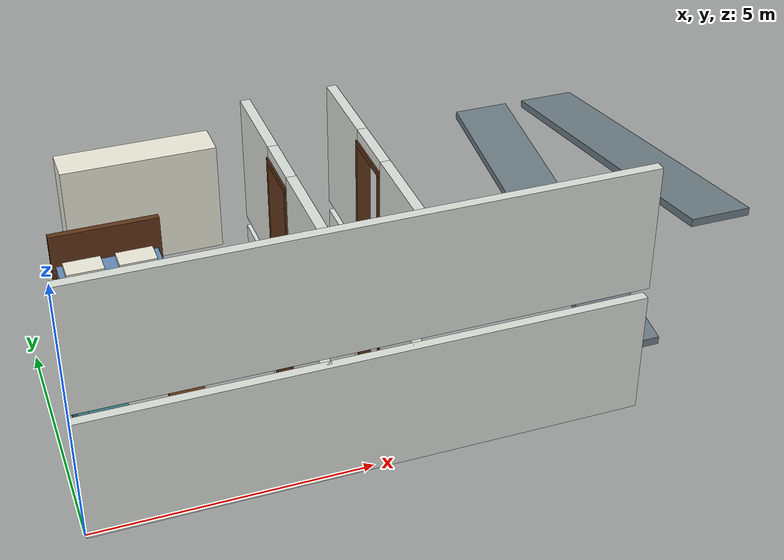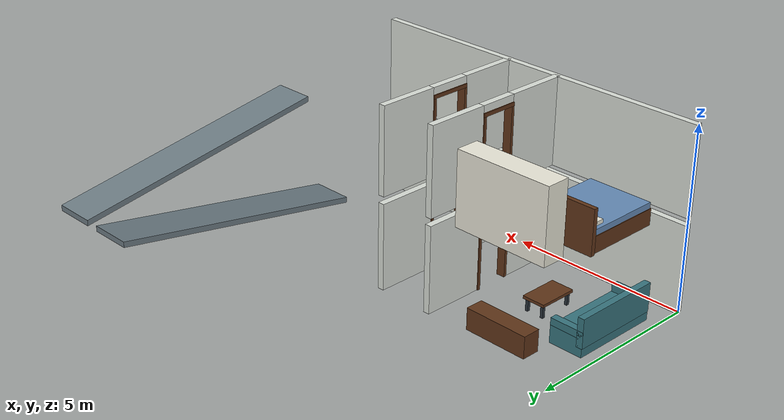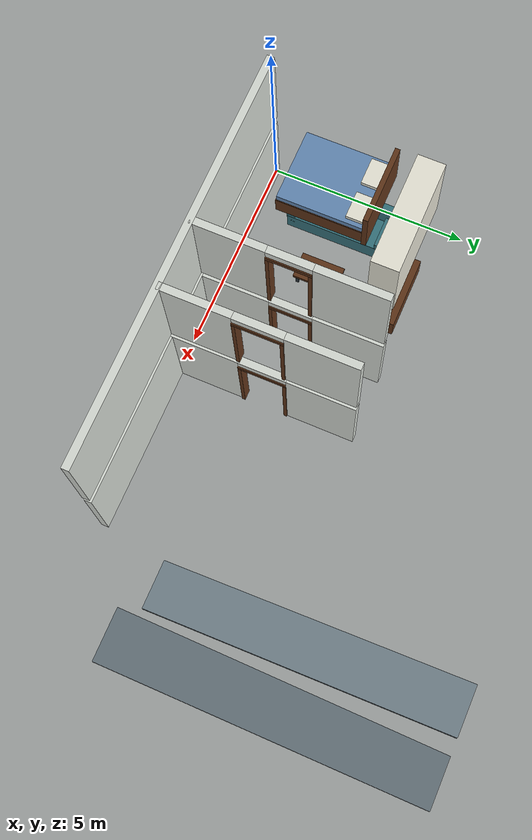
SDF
<sdf version="1.7">
 <model name="home_indoor">
  <static>true</static>
  <link name="f0_south">
   <pose>5 0 1.2 0 0 0</pose>
   <collision name="f0_south_collision">
    <geometry><box><size>10 0.18 2.4</size></box></geometry>
    <surface><friction><ode><mu>1.0</mu><mu2>1.0</mu2></ode></friction></surface>
   </collision>
   <visual name="f0_south_visual">
    <geometry><box><size>10 0.18 2.4</size></box></geometry>
    <material><ambient>0.86 0.88 0.85 1</ambient><diffuse>0.86 0.88 0.85 1</diffuse></material>
   </visual>
  </link>
  <link name="f0_room_4.2_0_south">
   <pose>4.2 0.86 1.2 0 0 0</pose>
   <collision name="f0_room_4.2_0_south_collision">
    <geometry><box><size>0.18 1.72 2.4</size></box></geometry>
    <surface><friction><ode><mu>1.0</mu><mu2>1.0</mu2></ode></friction></surface>
   </collision>
   <visual name="f0_room_4.2_0_south_visual">
    <geometry><box><size>0.18 1.72 2.4</size></box></geometry>
    <material><ambient>0.86 0.88 0.85 1</ambient><diffuse>0.86 0.88 0.85 1</diffuse></material>
   </visual>
  </link>
  <link name="f0_room_4.2_0_north">
   <pose>4.2 3.64 1.2 0 0 0</pose>
   <collision name="f0_room_4.2_0_north_collision">
    <geometry><box><size>0.18 1.72 2.4</size></box></geometry>
    <surface><friction><ode><mu>1.0</mu><mu2>1.0</mu2></ode></friction></surface>
   </collision>
   <visual name="f0_room_4.2_0_north_visual">
    <geometry><box><size>0.18 1.72 2.4</size></box></geometry>
    <material><ambient>0.86 0.88 0.85 1</ambient><diffuse>0.86 0.88 0.85 1</diffuse></material>
   </visual>
  </link>
  <link name="f0_room_4.2_0_lintel">
   <pose>4.2 2.25 2.3 0 0 0</pose>
   <collision name="f0_room_4.2_0_lintel_collision">
    <geometry><box><size>0.18 1.06 0.2</size></box></geometry>
    <surface><friction><ode><mu>1.0</mu><mu2>1.0</mu2></ode></friction></surface>
   </collision>
   <visual name="f0_room_4.2_0_lintel_visual">
    <geometry><box><size>0.18 1.06 0.2</size></box></geometry>
    <material><ambient>0.86 0.88 0.85 1</ambient><diffuse>0.86 0.88 0.85 1</diffuse></material>
   </visual>
  </link>
  <link name="f0_room_4.2_0_jamb_-1">
   <pose>4.2 1.76 1.05 0 0 0</pose>
   <collision name="f0_room_4.2_0_jamb_-1_collision">
    <geometry><box><size>0.24 0.08 2.1</size></box></geometry>
    <surface><friction><ode><mu>1.0</mu><mu2>1.0</mu2></ode></friction></surface>
   </collision>
   <visual name="f0_room_4.2_0_jamb_-1_visual">
    <geometry><box><size>0.24 0.08 2.1</size></box></geometry>
    <material><ambient>0.38 0.21 0.10 1</ambient><diffuse>0.38 0.21 0.10 1</diffuse></material>
   </visual>
  </link>
  <link name="f0_room_4.2_0_jamb_1">
   <pose>4.2 2.74 1.05 0 0 0</pose>
   <collision name="f0_room_4.2_0_jamb_1_collision">
    <geometry><box><size>0.24 0.08 2.1</size></box></geometry>
    <surface><friction><ode><mu>1.0</mu><mu2>1.0</mu2></ode></friction></surface>
   </collision>
   <visual name="f0_room_4.2_0_jamb_1_visual">
    <geometry><box><size>0.24 0.08 2.1</size></box></geometry>
    <material><ambient>0.38 0.21 0.10 1</ambient><diffuse>0.38 0.21 0.10 1</diffuse></material>
   </visual>
  </link>
  <link name="f0_room_4.2_0_frame_top">
   <pose>4.2 2.25 2.15 0 0 0</pose>
   <collision name="f0_room_4.2_0_frame_top_collision">
    <geometry><box><size>0.24 1.06 0.1</size></box></geometry>
    <surface><friction><ode><mu>1.0</mu><mu2>1.0</mu2></ode></friction></surface>
   </collision>
   <visual name="f0_room_4.2_0_frame_top_visual">
    <geometry><box><size>0.24 1.06 0.1</size></box></geometry>
    <material><ambient>0.38 0.21 0.10 1</ambient><diffuse>0.38 0.21 0.10 1</diffuse></material>
   </visual>
  </link>
  <link name="f0_room_5.8_0_south">
   <pose>5.8 0.835 1.2 0 0 0</pose>
   <collision name="f0_room_5.8_0_south_collision">
    <geometry><box><size>0.18 1.67 2.4</size></box></geometry>
    <surface><friction><ode><mu>1.0</mu><mu2>1.0</mu2></ode></friction></surface>
   </collision>
   <visual name="f0_room_5.8_0_south_visual">
    <geometry><box><size>0.18 1.67 2.4</size></box></geometry>
    <material><ambient>0.86 0.88 0.85 1</ambient><diffuse>0.86 0.88 0.85 1</diffuse></material>
   </visual>
  </link>
  <link name="f0_room_5.8_0_north">
   <pose>5.8 3.665 1.2 0 0 0</pose>
   <collision name="f0_room_5.8_0_north_collision">
    <geometry><box><size>0.18 1.67 2.4</size></box></geometry>
    <surface><friction><ode><mu>1.0</mu><mu2>1.0</mu2></ode></friction></surface>
   </collision>
   <visual name="f0_room_5.8_0_north_visual">
    <geometry><box><size>0.18 1.67 2.4</size></box></geometry>
    <material><ambient>0.86 0.88 0.85 1</ambient><diffuse>0.86 0.88 0.85 1</diffuse></material>
   </visual>
  </link>
  <link name="f0_room_5.8_0_lintel">
   <pose>5.8 2.25 2.3 0 0 0</pose>
   <collision name="f0_room_5.8_0_lintel_collision">
    <geometry><box><size>0.18 1.16 0.2</size></box></geometry>
    <surface><friction><ode><mu>1.0</mu><mu2>1.0</mu2></ode></friction></surface>
   </collision>
   <visual name="f0_room_5.8_0_lintel_visual">
    <geometry><box><size>0.18 1.16 0.2</size></box></geometry>
    <material><ambient>0.86 0.88 0.85 1</ambient><diffuse>0.86 0.88 0.85 1</diffuse></material>
   </visual>
  </link>
  <link name="f0_room_5.8_0_jamb_-1">
   <pose>5.8 1.71 1.05 0 0 0</pose>
   <collision name="f0_room_5.8_0_jamb_-1_collision">
    <geometry><box><size>0.24 0.08 2.1</size></box></geometry>
    <surface><friction><ode><mu>1.0</mu><mu2>1.0</mu2></ode></friction></surface>
   </collision>
   <visual name="f0_room_5.8_0_jamb_-1_visual">
    <geometry><box><size>0.24 0.08 2.1</size></box></geometry>
    <material><ambient>0.38 0.21 0.10 1</ambient><diffuse>0.38 0.21 0.10 1</diffuse></material>
   </visual>
  </link>
  <link name="f0_room_5.8_0_jamb_1">
   <pose>5.8 2.79 1.05 0 0 0</pose>
   <collision name="f0_room_5.8_0_jamb_1_collision">
    <geometry><box><size>0.24 0.08 2.1</size></box></geometry>
    <surface><friction><ode><mu>1.0</mu><mu2>1.0</mu2></ode></friction></surface>
   </collision>
   <visual name="f0_room_5.8_0_jamb_1_visual">
    <geometry><box><size>0.24 0.08 2.1</size></box></geometry>
    <material><ambient>0.38 0.21 0.10 1</ambient><diffuse>0.38 0.21 0.10 1</diffuse></material>
   </visual>
  </link>
  <link name="f0_room_5.8_0_frame_top">
   <pose>5.8 2.25 2.15 0 0 0</pose>
   <collision name="f0_room_5.8_0_frame_top_collision">
    <geometry><box><size>0.24 1.16 0.1</size></box></geometry>
    <surface><friction><ode><mu>1.0</mu><mu2>1.0</mu2></ode></friction></surface>
   </collision>
   <visual name="f0_room_5.8_0_frame_top_visual">
    <geometry><box><size>0.24 1.16 0.1</size></box></geometry>
    <material><ambient>0.38 0.21 0.10 1</ambient><diffuse>0.38 0.21 0.10 1</diffuse></material>
   </visual>
  </link>
  <link name="f1_south">
   <pose>5 0 3.8 0 0 0</pose>
   <collision name="f1_south_collision">
    <geometry><box><size>10 0.18 2.4</size></box></geometry>
    <surface><friction><ode><mu>1.0</mu><mu2>1.0</mu2></ode></friction></surface>
   </collision>
   <visual name="f1_south_visual">
    <geometry><box><size>10 0.18 2.4</size></box></geometry>
    <material><ambient>0.86 0.88 0.85 1</ambient><diffuse>0.86 0.88 0.85 1</diffuse></material>
   </visual>
  </link>
  <link name="f1_room_4.2_0_south">
   <pose>4.2 0.86 3.8 0 0 0</pose>
   <collision name="f1_room_4.2_0_south_collision">
    <geometry><box><size>0.18 1.72 2.4</size></box></geometry>
    <surface><friction><ode><mu>1.0</mu><mu2>1.0</mu2></ode></friction></surface>
   </collision>
   <visual name="f1_room_4.2_0_south_visual">
    <geometry><box><size>0.18 1.72 2.4</size></box></geometry>
    <material><ambient>0.86 0.88 0.85 1</ambient><diffuse>0.86 0.88 0.85 1</diffuse></material>
   </visual>
  </link>
  <link name="f1_room_4.2_0_north">
   <pose>4.2 3.64 3.8 0 0 0</pose>
   <collision name="f1_room_4.2_0_north_collision">
    <geometry><box><size>0.18 1.72 2.4</size></box></geometry>
    <surface><friction><ode><mu>1.0</mu><mu2>1.0</mu2></ode></friction></surface>
   </collision>
   <visual name="f1_room_4.2_0_north_visual">
    <geometry><box><size>0.18 1.72 2.4</size></box></geometry>
    <material><ambient>0.86 0.88 0.85 1</ambient><diffuse>0.86 0.88 0.85 1</diffuse></material>
   </visual>
  </link>
  <link name="f1_room_4.2_0_lintel">
   <pose>4.2 2.25 4.9 0 0 0</pose>
   <collision name="f1_room_4.2_0_lintel_collision">
    <geometry><box><size>0.18 1.06 0.2</size></box></geometry>
    <surface><friction><ode><mu>1.0</mu><mu2>1.0</mu2></ode></friction></surface>
   </collision>
   <visual name="f1_room_4.2_0_lintel_visual">
    <geometry><box><size>0.18 1.06 0.2</size></box></geometry>
    <material><ambient>0.86 0.88 0.85 1</ambient><diffuse>0.86 0.88 0.85 1</diffuse></material>
   </visual>
  </link>
  <link name="f1_room_4.2_0_jamb_-1">
   <pose>4.2 1.76 3.65 0 0 0</pose>
   <collision name="f1_room_4.2_0_jamb_-1_collision">
    <geometry><box><size>0.24 0.08 2.1</size></box></geometry>
    <surface><friction><ode><mu>1.0</mu><mu2>1.0</mu2></ode></friction></surface>
   </collision>
   <visual name="f1_room_4.2_0_jamb_-1_visual">
    <geometry><box><size>0.24 0.08 2.1</size></box></geometry>
    <material><ambient>0.38 0.21 0.10 1</ambient><diffuse>0.38 0.21 0.10 1</diffuse></material>
   </visual>
  </link>
  <link name="f1_room_4.2_0_jamb_1">
   <pose>4.2 2.74 3.65 0 0 0</pose>
   <collision name="f1_room_4.2_0_jamb_1_collision">
    <geometry><box><size>0.24 0.08 2.1</size></box></geometry>
    <surface><friction><ode><mu>1.0</mu><mu2>1.0</mu2></ode></friction></surface>
   </collision>
   <visual name="f1_room_4.2_0_jamb_1_visual">
    <geometry><box><size>0.24 0.08 2.1</size></box></geometry>
    <material><ambient>0.38 0.21 0.10 1</ambient><diffuse>0.38 0.21 0.10 1</diffuse></material>
   </visual>
  </link>
  <link name="f1_room_4.2_0_frame_top">
   <pose>4.2 2.25 4.75 0 0 0</pose>
   <collision name="f1_room_4.2_0_frame_top_collision">
    <geometry><box><size>0.24 1.06 0.1</size></box></geometry>
    <surface><friction><ode><mu>1.0</mu><mu2>1.0</mu2></ode></friction></surface>
   </collision>
   <visual name="f1_room_4.2_0_frame_top_visual">
    <geometry><box><size>0.24 1.06 0.1</size></box></geometry>
    <material><ambient>0.38 0.21 0.10 1</ambient><diffuse>0.38 0.21 0.10 1</diffuse></material>
   </visual>
  </link>
  <link name="f1_room_5.8_0_south">
   <pose>5.8 0.835 3.8 0 0 0</pose>
   <collision name="f1_room_5.8_0_south_collision">
    <geometry><box><size>0.18 1.67 2.4</size></box></geometry>
    <surface><friction><ode><mu>1.0</mu><mu2>1.0</mu2></ode></friction></surface>
   </collision>
   <visual name="f1_room_5.8_0_south_visual">
    <geometry><box><size>0.18 1.67 2.4</size></box></geometry>
    <material><ambient>0.86 0.88 0.85 1</ambient><diffuse>0.86 0.88 0.85 1</diffuse></material>
   </visual>
  </link>
  <link name="f1_room_5.8_0_north">
   <pose>5.8 3.665 3.8 0 0 0</pose>
   <collision name="f1_room_5.8_0_north_collision">
    <geometry><box><size>0.18 1.67 2.4</size></box></geometry>
    <surface><friction><ode><mu>1.0</mu><mu2>1.0</mu2></ode></friction></surface>
   </collision>
   <visual name="f1_room_5.8_0_north_visual">
    <geometry><box><size>0.18 1.67 2.4</size></box></geometry>
    <material><ambient>0.86 0.88 0.85 1</ambient><diffuse>0.86 0.88 0.85 1</diffuse></material>
   </visual>
  </link>
  <link name="f1_room_5.8_0_lintel">
   <pose>5.8 2.25 4.9 0 0 0</pose>
   <collision name="f1_room_5.8_0_lintel_collision">
    <geometry><box><size>0.18 1.16 0.2</size></box></geometry>
    <surface><friction><ode><mu>1.0</mu><mu2>1.0</mu2></ode></friction></surface>
   </collision>
   <visual name="f1_room_5.8_0_lintel_visual">
    <geometry><box><size>0.18 1.16 0.2</size></box></geometry>
    <material><ambient>0.86 0.88 0.85 1</ambient><diffuse>0.86 0.88 0.85 1</diffuse></material>
   </visual>
  </link>
  <link name="f1_room_5.8_0_jamb_-1">
   <pose>5.8 1.71 3.65 0 0 0</pose>
   <collision name="f1_room_5.8_0_jamb_-1_collision">
    <geometry><box><size>0.24 0.08 2.1</size></box></geometry>
    <surface><friction><ode><mu>1.0</mu><mu2>1.0</mu2></ode></friction></surface>
   </collision>
   <visual name="f1_room_5.8_0_jamb_-1_visual">
    <geometry><box><size>0.24 0.08 2.1</size></box></geometry>
    <material><ambient>0.38 0.21 0.10 1</ambient><diffuse>0.38 0.21 0.10 1</diffuse></material>
   </visual>
  </link>
  <link name="f1_room_5.8_0_jamb_1">
   <pose>5.8 2.79 3.65 0 0 0</pose>
   <collision name="f1_room_5.8_0_jamb_1_collision">
    <geometry><box><size>0.24 0.08 2.1</size></box></geometry>
    <surface><friction><ode><mu>1.0</mu><mu2>1.0</mu2></ode></friction></surface>
   </collision>
   <visual name="f1_room_5.8_0_jamb_1_visual">
    <geometry><box><size>0.24 0.08 2.1</size></box></geometry>
    <material><ambient>0.38 0.21 0.10 1</ambient><diffuse>0.38 0.21 0.10 1</diffuse></material>
   </visual>
  </link>
  <link name="f1_room_5.8_0_frame_top">
   <pose>5.8 2.25 4.75 0 0 0</pose>
   <collision name="f1_room_5.8_0_frame_top_collision">
    <geometry><box><size>0.24 1.16 0.1</size></box></geometry>
    <surface><friction><ode><mu>1.0</mu><mu2>1.0</mu2></ode></friction></surface>
   </collision>
   <visual name="f1_room_5.8_0_frame_top_visual">
    <geometry><box><size>0.24 1.16 0.1</size></box></geometry>
    <material><ambient>0.38 0.21 0.10 1</ambient><diffuse>0.38 0.21 0.10 1</diffuse></material>
   </visual>
  </link>
  <link name="living_sofa_base">
   <pose>0.8 2.1 0.24 0 0 0</pose>
   <collision name="living_sofa_base_collision">
    <geometry><box><size>0.95 2.5 0.48</size></box></geometry>
    <surface><friction><ode><mu>1.0</mu><mu2>1.0</mu2></ode></friction></surface>
   </collision>
   <visual name="living_sofa_base_visual">
    <geometry><box><size>0.95 2.5 0.48</size></box></geometry>
    <material><ambient>0.22 0.46 0.50 1</ambient><diffuse>0.22 0.46 0.50 1</diffuse></material>
   </visual>
  </link>
  <link name="living_sofa_back">
   <pose>0.4 2.1 0.64 0 0 0</pose>
   <collision name="living_sofa_back_collision">
    <geometry><box><size>0.18 2.5 0.8</size></box></geometry>
    <surface><friction><ode><mu>1.0</mu><mu2>1.0</mu2></ode></friction></surface>
   </collision>
   <visual name="living_sofa_back_visual">
    <geometry><box><size>0.18 2.5 0.8</size></box></geometry>
    <material><ambient>0.22 0.46 0.50 1</ambient><diffuse>0.22 0.46 0.50 1</diffuse></material>
   </visual>
  </link>
  <link name="living_sofa_arm_-1.15">
   <pose>0.8 0.95 0.48 0 0 0</pose>
   <collision name="living_sofa_arm_-1.15_collision">
    <geometry><box><size>0.95 0.2 0.4</size></box></geometry>
    <surface><friction><ode><mu>1.0</mu><mu2>1.0</mu2></ode></friction></surface>
   </collision>
   <visual name="living_sofa_arm_-1.15_visual">
    <geometry><box><size>0.95 0.2 0.4</size></box></geometry>
    <material><ambient>0.22 0.46 0.50 1</ambient><diffuse>0.22 0.46 0.50 1</diffuse></material>
   </visual>
  </link>
  <link name="living_sofa_arm_1.15">
   <pose>0.8 3.25 0.48 0 0 0</pose>
   <collision name="living_sofa_arm_1.15_collision">
    <geometry><box><size>0.95 0.2 0.4</size></box></geometry>
    <surface><friction><ode><mu>1.0</mu><mu2>1.0</mu2></ode></friction></surface>
   </collision>
   <visual name="living_sofa_arm_1.15_visual">
    <geometry><box><size>0.95 0.2 0.4</size></box></geometry>
    <material><ambient>0.22 0.46 0.50 1</ambient><diffuse>0.22 0.46 0.50 1</diffuse></material>
   </visual>
  </link>
  <link name="coffee_top">
   <pose>2.35 2.15 0.38 0 0 0</pose>
   <collision name="coffee_top_collision">
    <geometry><box><size>0.65 1.1 0.08</size></box></geometry>
    <surface><friction><ode><mu>1.0</mu><mu2>1.0</mu2></ode></friction></surface>
   </collision>
   <visual name="coffee_top_visual">
    <geometry><box><size>0.65 1.1 0.08</size></box></geometry>
    <material><ambient>0.38 0.21 0.10 1</ambient><diffuse>0.38 0.21 0.10 1</diffuse></material>
   </visual>
  </link>
  <link name="coffee_leg_-1_-1">
   <pose>2.115 1.69 0.17 0 0 0</pose>
   <collision name="coffee_leg_-1_-1_collision">
    <geometry><box><size>0.08 0.08 0.34</size></box></geometry>
    <surface><friction><ode><mu>1.0</mu><mu2>1.0</mu2></ode></friction></surface>
   </collision>
   <visual name="coffee_leg_-1_-1_visual">
    <geometry><box><size>0.08 0.08 0.34</size></box></geometry>
    <material><ambient>0.16 0.20 0.23 1</ambient><diffuse>0.16 0.20 0.23 1</diffuse></material>
   </visual>
  </link>
  <link name="coffee_leg_-1_1">
   <pose>2.115 2.61 0.17 0 0 0</pose>
   <collision name="coffee_leg_-1_1_collision">
    <geometry><box><size>0.08 0.08 0.34</size></box></geometry>
    <surface><friction><ode><mu>1.0</mu><mu2>1.0</mu2></ode></friction></surface>
   </collision>
   <visual name="coffee_leg_-1_1_visual">
    <geometry><box><size>0.08 0.08 0.34</size></box></geometry>
    <material><ambient>0.16 0.20 0.23 1</ambient><diffuse>0.16 0.20 0.23 1</diffuse></material>
   </visual>
  </link>
  <link name="coffee_leg_1_-1">
   <pose>2.585 1.69 0.17 0 0 0</pose>
   <collision name="coffee_leg_1_-1_collision">
    <geometry><box><size>0.08 0.08 0.34</size></box></geometry>
    <surface><friction><ode><mu>1.0</mu><mu2>1.0</mu2></ode></friction></surface>
   </collision>
   <visual name="coffee_leg_1_-1_visual">
    <geometry><box><size>0.08 0.08 0.34</size></box></geometry>
    <material><ambient>0.16 0.20 0.23 1</ambient><diffuse>0.16 0.20 0.23 1</diffuse></material>
   </visual>
  </link>
  <link name="coffee_leg_1_1">
   <pose>2.585 2.61 0.17 0 0 0</pose>
   <collision name="coffee_leg_1_1_collision">
    <geometry><box><size>0.08 0.08 0.34</size></box></geometry>
    <surface><friction><ode><mu>1.0</mu><mu2>1.0</mu2></ode></friction></surface>
   </collision>
   <visual name="coffee_leg_1_1_visual">
    <geometry><box><size>0.08 0.08 0.34</size></box></geometry>
    <material><ambient>0.16 0.20 0.23 1</ambient><diffuse>0.16 0.20 0.23 1</diffuse></material>
   </visual>
  </link>
  <link name="tv_stand">
   <pose>2.1 4.1 0.3 0 0 0</pose>
   <collision name="tv_stand_collision">
    <geometry><box><size>1.8 0.5 0.6</size></box></geometry>
    <surface><friction><ode><mu>1.0</mu><mu2>1.0</mu2></ode></friction></surface>
   </collision>
   <visual name="tv_stand_visual">
    <geometry><box><size>1.8 0.5 0.6</size></box></geometry>
    <material><ambient>0.38 0.21 0.10 1</ambient><diffuse>0.38 0.21 0.10 1</diffuse></material>
   </visual>
  </link>
  <link name="master_bed_base">
   <pose>1.3 2.1 2.82 0 0 0</pose>
   <collision name="master_bed_base_collision">
    <geometry><box><size>1.8 2.2 0.44</size></box></geometry>
    <surface><friction><ode><mu>1.0</mu><mu2>1.0</mu2></ode></friction></surface>
   </collision>
   <visual name="master_bed_base_visual">
    <geometry><box><size>1.8 2.2 0.44</size></box></geometry>
    <material><ambient>0.38 0.21 0.10 1</ambient><diffuse>0.38 0.21 0.10 1</diffuse></material>
   </visual>
  </link>
  <link name="master_bed_mattress">
   <pose>1.3 2.1 3.11 0 0 0</pose>
   <collision name="master_bed_mattress_collision">
    <geometry><box><size>1.76 2.16 0.18</size></box></geometry>
    <surface><friction><ode><mu>1.0</mu><mu2>1.0</mu2></ode></friction></surface>
   </collision>
   <visual name="master_bed_mattress_visual">
    <geometry><box><size>1.76 2.16 0.18</size></box></geometry>
    <material><ambient>0.40 0.55 0.72 1</ambient><diffuse>0.40 0.55 0.72 1</diffuse></material>
   </visual>
  </link>
  <link name="master_bed_head">
   <pose>1.3 3.17 3.2 0 0 0</pose>
   <collision name="master_bed_head_collision">
    <geometry><box><size>1.9 0.12 1.2</size></box></geometry>
    <surface><friction><ode><mu>1.0</mu><mu2>1.0</mu2></ode></friction></surface>
   </collision>
   <visual name="master_bed_head_visual">
    <geometry><box><size>1.9 0.12 1.2</size></box></geometry>
    <material><ambient>0.38 0.21 0.10 1</ambient><diffuse>0.38 0.21 0.10 1</diffuse></material>
   </visual>
  </link>
  <link name="master_bed_pillow_-0.45">
   <pose>0.85 2.85 3.25 0 0 0</pose>
   <collision name="master_bed_pillow_-0.45_collision">
    <geometry><box><size>0.65 0.4 0.1</size></box></geometry>
    <surface><friction><ode><mu>1.0</mu><mu2>1.0</mu2></ode></friction></surface>
   </collision>
   <visual name="master_bed_pillow_-0.45_visual">
    <geometry><box><size>0.65 0.4 0.1</size></box></geometry>
    <material><ambient>0.93 0.92 0.86 1</ambient><diffuse>0.93 0.92 0.86 1</diffuse></material>
   </visual>
  </link>
  <link name="master_bed_pillow_0.45">
   <pose>1.75 2.85 3.25 0 0 0</pose>
   <collision name="master_bed_pillow_0.45_collision">
    <geometry><box><size>0.65 0.4 0.1</size></box></geometry>
    <surface><friction><ode><mu>1.0</mu><mu2>1.0</mu2></ode></friction></surface>
   </collision>
   <visual name="master_bed_pillow_0.45_visual">
    <geometry><box><size>0.65 0.4 0.1</size></box></geometry>
    <material><ambient>0.93 0.92 0.86 1</ambient><diffuse>0.93 0.92 0.86 1</diffuse></material>
   </visual>
  </link>
  <link name="master_wardrobe">
   <pose>2.1 4.05 3.6 0 0 0</pose>
   <collision name="master_wardrobe_collision">
    <geometry><box><size>2.7 0.65 2</size></box></geometry>
    <surface><friction><ode><mu>1.0</mu><mu2>1.0</mu2></ode></friction></surface>
   </collision>
   <visual name="master_wardrobe_visual">
    <geometry><box><size>2.7 0.65 2</size></box></geometry>
    <material><ambient>0.93 0.92 0.86 1</ambient><diffuse>0.93 0.92 0.86 1</diffuse></material>
   </visual>
  </link>
  <link name="ramp_lower">
   <collision name="ramp_lower_collision">
    <geometry><mesh><uri>model://home_indoor/meshes/ramp_lower.stl</uri></mesh></geometry>
    <surface><friction><ode><mu>1.0</mu><mu2>1.0</mu2></ode></friction></surface>
   </collision>
   <visual name="ramp_lower_visual">
    <geometry><mesh><uri>model://home_indoor/meshes/ramp_lower.stl</uri></mesh></geometry>
    <material><ambient>0.43 0.49 0.52 1</ambient><diffuse>0.43 0.49 0.52 1</diffuse></material>
   </visual>
  </link>
  <link name="ramp_upper">
   <collision name="ramp_upper_collision">
    <geometry><mesh><uri>model://home_indoor/meshes/ramp_upper.stl</uri></mesh></geometry>
    <surface><friction><ode><mu>1.0</mu><mu2>1.0</mu2></ode></friction></surface>
   </collision>
   <visual name="ramp_upper_visual">
    <geometry><mesh><uri>model://home_indoor/meshes/ramp_upper.stl</uri></mesh></geometry>
    <material><ambient>0.43 0.49 0.52 1</ambient><diffuse>0.43 0.49 0.52 1</diffuse></material>
   </visual>
  </link>
 </model>
</sdf>
